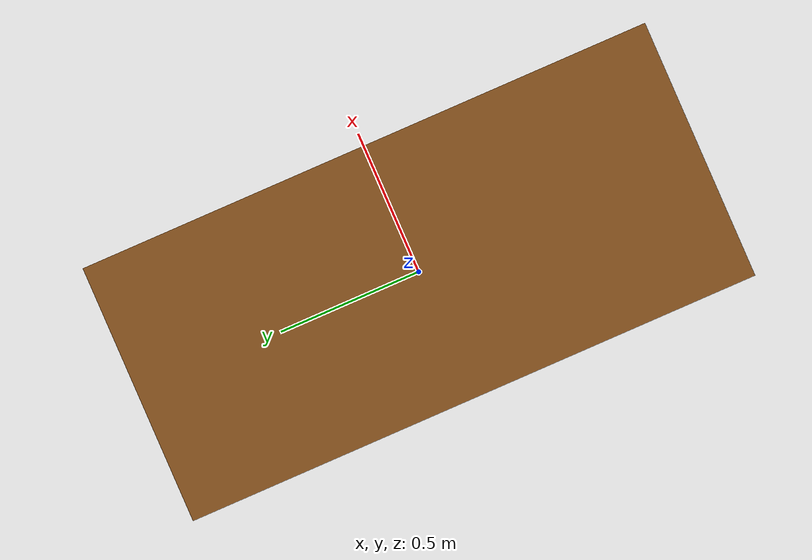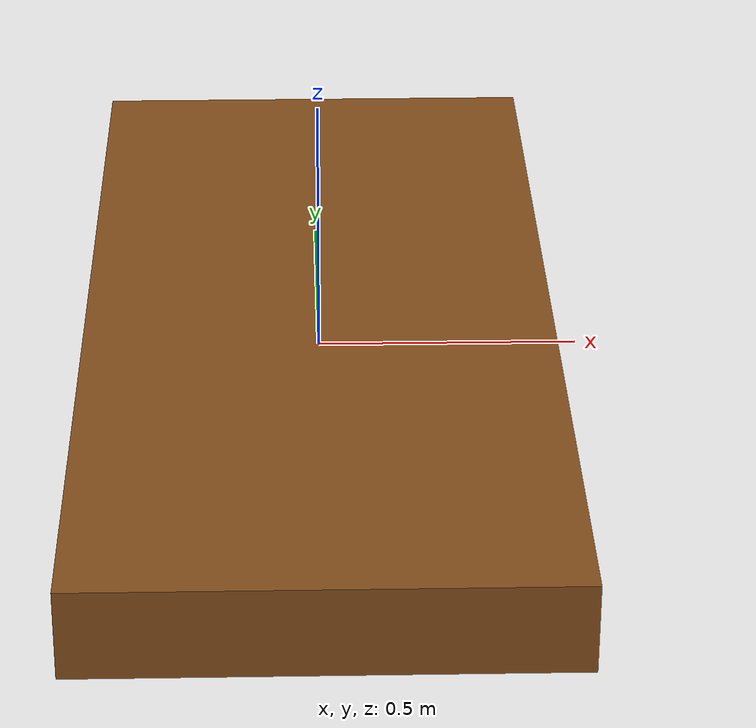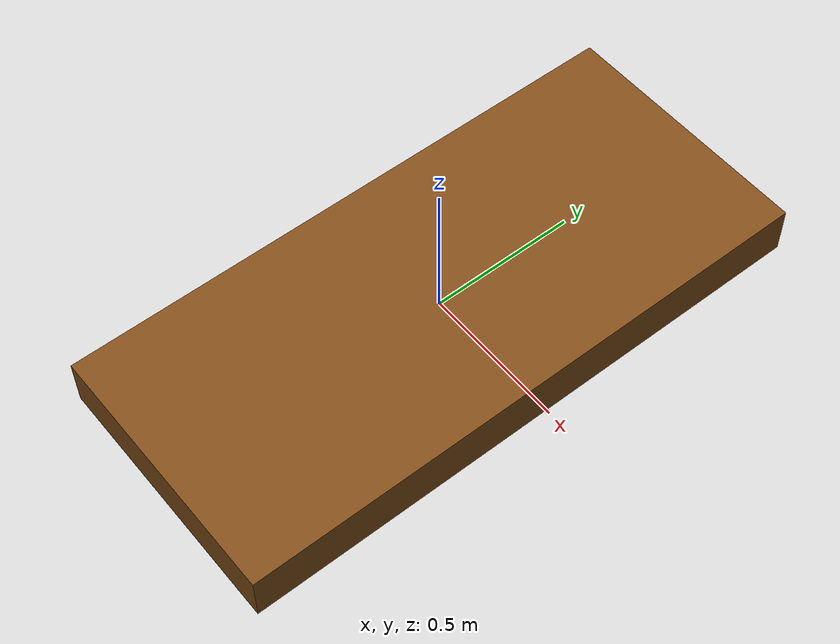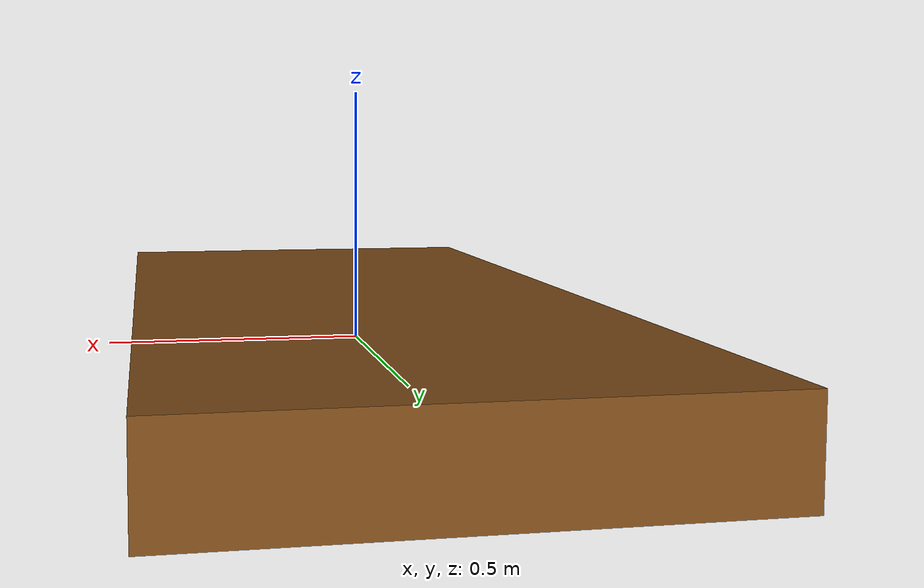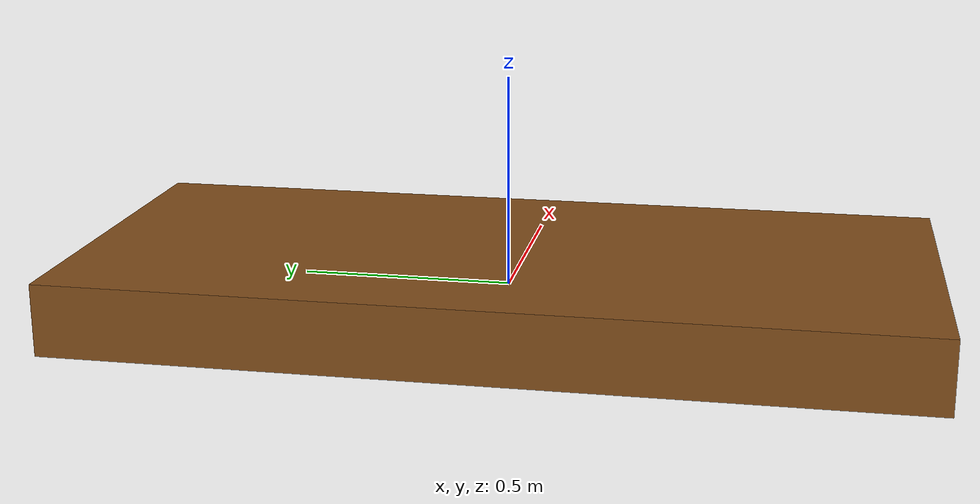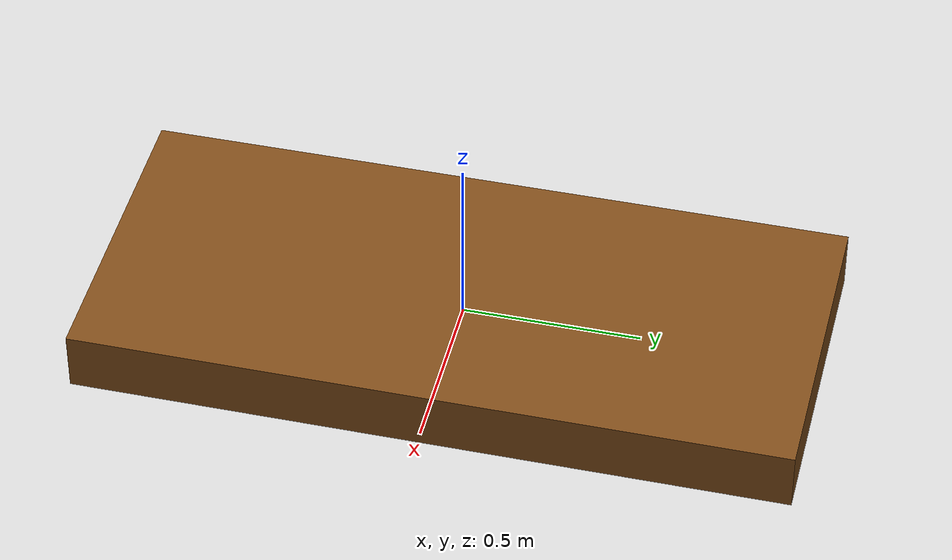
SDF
<?xml version="1.0" ?>

<!-- Bed model for Gazebo simulation
    It is implemented as seperate .sdf file so the collision with the robot and the patient can be simulated
-->

<sdf version="1.7">
    <model name = "Bed">
        <static>true</static>
        <link name="Bed">
            <pose> 0 0 0 0 0 0</pose>
            <collision name="collision">
                <geometry>
                    <box>
                        <size>0.900 2.004 0.170</size>  <!-- length, width, height in meters -->
                    </box>
                </geometry>
            </collision>
            <visual name="visual">
                <geometry>
                    <box>
                        <size>0.900 2.004 0.170</size>
                    </box>
                </geometry>
                <material>
                    <ambient>0.5 0.3 0.1 1</ambient>
                    <diffuse>0.5 0.3 0.1 1</diffuse>
                </material>
            </visual>
        </link>
    </model>
</sdf>
